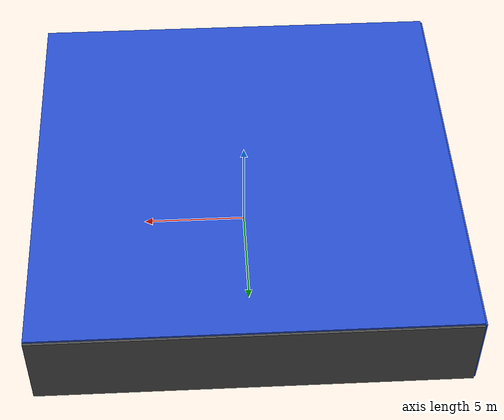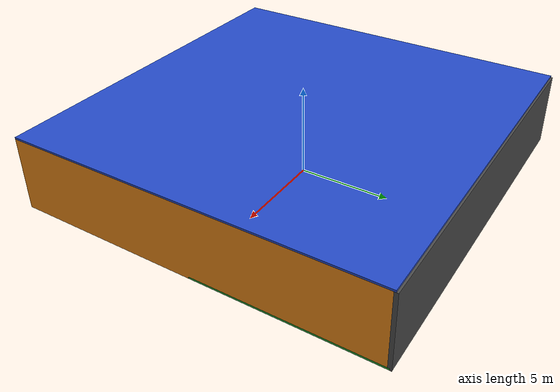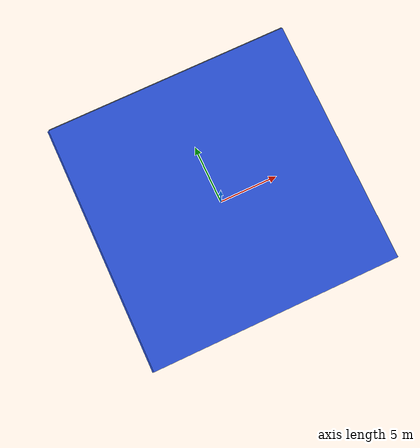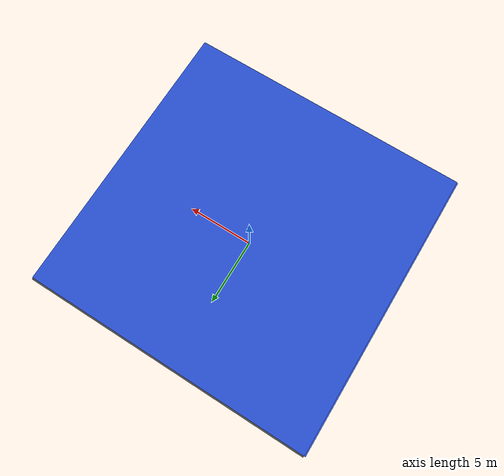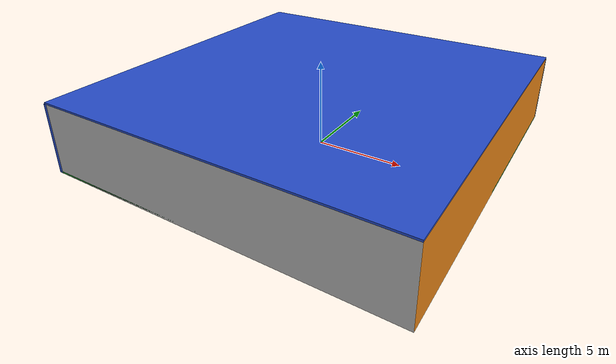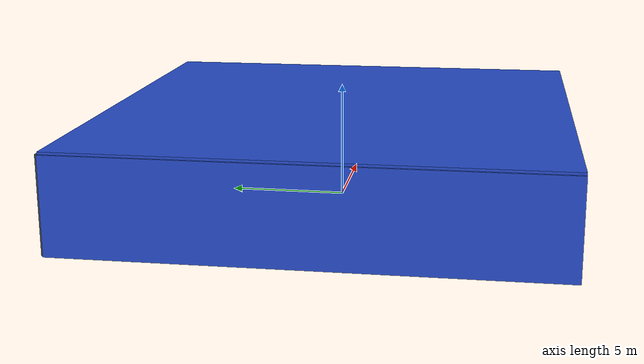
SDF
<sdf version="1.4">
 <world name="default">
  <physics type="ode">
   <max_step_size>0.001</max_step_size>
   <real_time_factor>1</real_time_factor>
   <real_time_update_rate>1000</real_time_update_rate>
   <gravity>0 0 -9.8</gravity>
  </physics>
  <scene><ambient>0.4 0.4 0.4 1</ambient><background>0.7 0.7 0.7 1</background><shadows>1</shadows></scene>
  <model name="Surrounding">
   <static>1</static>
   <link name="Ceiling">
    <collision name="Ceiling_Collision"><geometry><box><size>20 20 0.1</size></box></geometry></collision>
    <visual name="Ceiling_Visual">
     <geometry><box><size>20 20 0.1</size></box></geometry>
     <material>
      <script><uri>file://media/materials/scripts/gazebo.material</uri><name>Gazebo/Blue</name></script>
     </material>
    </visual>
    <pose>0 0 4.05 0 0 0</pose>
   </link>
   <link name="Wall_South">
    <collision name="Wall_South_Collision">
     <geometry><box><size>20 0 4</size></box></geometry>
     <pose>0 0 2 0 -0 0</pose>
    </collision>
    <visual name="Wall_South_Visual">
     <pose>0 0 2 0 -0 0</pose>
     <geometry><box><size>20 0 4</size></box></geometry>
     <material>
      <script><uri>file://media/materials/scripts/gazebo.material</uri><name>Gazebo/LightOff</name></script>
     </material>
    </visual>
    <velocity_decay><linear>0</linear><angular>0</angular></velocity_decay>
    <pose>0 -10 0 0 -0 0</pose>
   </link>
   <link name="Wall_East">
    <collision name="Wall_21_Collision">
     <geometry><box><size>20 0 4</size></box></geometry>
     <pose>0 0 2 0 -0 0</pose>
    </collision>
    <visual name="Wall_21_Visual">
     <pose>0 0 2 0 -0 0</pose>
     <geometry><box><size>20 0 4</size></box></geometry>
     <material>
      <script><uri>file://media/materials/scripts/gazebo.material</uri><name>Gazebo/Orange</name></script>
     </material>
    </visual>
    <velocity_decay><linear>0</linear><angular>0</angular></velocity_decay>
    <pose>10 0 0 0 -0 1.5708</pose>
   </link>
   <link name="Wall_North">
    <collision name="Wall_22_Collision">
     <geometry><box><size>20 0.2 4</size></box></geometry>
     <pose>0 0 2 0 -0 0</pose>
    </collision>
    <visual name="Wall_22_Visual">
     <pose>0 0 2 0 -0 0</pose>
     <geometry><box><size>20 0.2 4</size></box></geometry>
     <material>
      <script><uri>file://media/materials/scripts/gazebo.material</uri><name>Gazebo/Road</name></script>
     </material>
    </visual>
    <velocity_decay><linear>0</linear><angular>0</angular></velocity_decay>
    <pose>0 10 0 0 -0 0</pose>
   </link>
   <link name="Wall_West">
    <collision name="Wall_23_Collision">
     <geometry><box><size>20 0.2 4</size></box></geometry>
     <pose>0 0 2 0 -0 0</pose>
    </collision>
    <visual name="Wall_23_Visual">
     <pose>0 0 2 0 -0 0</pose>
     <geometry><box><size>20 0.2 4</size></box></geometry>
     <material>
      <script><uri>file://media/materials/scripts/gazebo.material</uri><name>Gazebo/BlueLaser</name></script>
     </material>
    </visual>
    <velocity_decay><linear>0</linear><angular>0</angular></velocity_decay>
    <pose>-10 0 0 0 0 -1.5708</pose>
   </link>
   <link name="Ground_link">
    <collision name="collision">
     <pose>0 0 .05 0 -0 0</pose>
     <geometry><box><size>20 20 0.1</size></box></geometry>
    </collision>
    <visual name="visual">
     <pose>0 0 .05 0 -0 0</pose>
     <geometry><box><size>20 20 0.1</size></box></geometry>
     <material>
      <script><uri>file://media/materials/scripts/gazebo.material</uri><name>Gazebo/GreenGlow</name></script>
     </material>
    </visual>
   </link>
   <static>1</static>
  </model>
  <spherical_coordinates>
   <surface_model>EARTH_WGS84</surface_model>
   <latitude_deg>0</latitude_deg>
   <longitude_deg>0</longitude_deg>
   <elevation>0</elevation>
   <heading_deg>0</heading_deg>
  </spherical_coordinates>
  <light name="lightball_0" type="diffuse">
   <diffuse>0.8 0.8 0.8 1</diffuse>
   <specular>0.2 0.2 0.2 1</specular>
   <attenuation>
    <range>100</range>
    <constant>0.7</constant>
    <linear>0.01</linear>
    <quadratic>0.001</quadratic>
   </attenuation>
   <direction>-0.5 0.1 -0.9</direction>
   <pose>4.74965194514 -3.16675350489 3.30199806109 0 0 0</pose>
  </light>
  <light name="lightball_1" type="diffuse">
   <diffuse>0.8 0.8 0.8 1</diffuse>
   <specular>0.2 0.2 0.2 1</specular>
   <attenuation>
    <range>100</range>
    <constant>0.7</constant>
    <linear>0.01</linear>
    <quadratic>0.001</quadratic>
   </attenuation>
   <direction>-0.5 0.1 -0.9</direction>
   <pose>2.38953933724 -9.25972449616 1.83572169368 0 0 0</pose>
  </light>
  <light name="lightball_2" type="diffuse">
   <diffuse>0.8 0.8 0.8 1</diffuse>
   <specular>0.2 0.2 0.2 1</specular>
   <attenuation>
    <range>100</range>
    <constant>0.7</constant>
    <linear>0.01</linear>
    <quadratic>0.001</quadratic>
   </attenuation>
   <direction>-0.5 0.1 -0.9</direction>
   <pose>2.31775702573 -5.59412869235 2.30058139841 0 0 0</pose>
  </light>
  <include>
   <uri>model://textured_shapes</uri>
   <pose>-5.25429917039 1.37376674667 0 0 0 0.0642331118764</pose>
  </include>
  <include><uri>model://cabinet</uri><pose>-1.74950805418 3.47395011037 0 0 0 1.65574952258</pose></include>
  <include><uri>model://cabinet</uri><pose>-1.09772439595 7.67421461001 0 0 0 2.05401122854</pose></include>
  <include><uri>model://cabinet</uri><pose>2.65556388385 -4.50815747656 0 0 0 2.32528830556</pose></include>
  <include><uri>model://cabinet</uri><pose>2.48879256538 1.79596814151 0 0 0 2.74587188384</pose></include>
  <include><uri>model://cabinet</uri><pose>1.87526057692 4.79898622221 0 0 0 0.858003121665</pose></include>
  <include><uri>model://cabinet</uri><pose>5.68452115506 7.17675591756 0 0 0 0.642338032576</pose></include>
 </world>
</sdf>

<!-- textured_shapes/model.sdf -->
<sdf version="1.6">
  <model name="textured_shapes">
    <pose>0 0 0.5 0 0 0</pose>
    <link name="box">
      <pose>0 -1.5 0 0 0 0</pose>
      <collision name="collision">
        <geometry>
          <box>
            <size>1 1 1</size>
          </box>
        </geometry>
      </collision>
      <visual name="visual">
        <geometry>
          <box>
            <size>1 1 1</size>
          </box>
        </geometry>
        <material>
          <script>
            <uri>model://../model_source/models/textured_shapes/materials/scripts</uri>
            <uri>model://../model_source/models/textured_shapes/materials/textures</uri>
            <name>TexturedShape/Squares</name>
          </script>
        </material>
      </visual>
    </link>
    <link name="sphere">
      <collision name="collision">
        <geometry>
          <sphere>
            <radius>0.5</radius>
          </sphere>
        </geometry>
      </collision>
      <visual name="visual">
        <geometry>
          <sphere>
            <radius>0.5</radius>
          </sphere>
        </geometry>
        <material>
          <script>
            <uri>model://../model_source/models/textured_shapes/materials/scripts</uri>
            <uri>model://../model_source/models/textured_shapes/materials/textures</uri>
            <name>TexturedShape/Squares</name>
          </script>
        </material>
      </visual>
    </link>
    <link name="cylinder">
      <pose>0 1.5 0 0 0 0</pose>
      <collision name="collision">
        <geometry>
          <cylinder>
            <radius>0.5</radius>
            <length>1</length>
          </cylinder>
        </geometry>
      </collision>
      <visual name="visual">
        <geometry>
          <cylinder>
            <radius>0.5</radius>
            <length>1</length>
          </cylinder>
        </geometry>
        <material>
          <script>
            <uri>model://../model_source/models/textured_shapes/materials/scripts</uri>
            <uri>model://../model_source/models/textured_shapes/materials/textures</uri>
            <name>TexturedShape/Squares</name>
          </script>
        </material>
      </visual>
    </link>
  </model>
</sdf>

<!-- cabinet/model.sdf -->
<sdf version="1.5">
  <model name="cabinet">
    <static>true</static>
    <link name="cabinet_bottom_plate">
      <inertial>
        <pose>0 0 -1 0 0 0</pose>
        <inertia>
          <ixx>2.050000</ixx>
          <ixy>0</ixy>
          <ixz>0</ixz>
          <iyy>2.050000</iyy>
          <iyz>0</iyz>
          <izz>2.050000</izz>
        </inertia>
        <mass>25.000000</mass>
      </inertial>
      <collision name="cabinet_bottom_plate_geom">
        <pose>0 0 0.010000 0 0 0</pose>
        <geometry>
          <box>
            <size>0.450000 0.450000 0.020000</size>
          </box>
        </geometry>
      </collision>
      <visual name="cabinet_bottom_plate_geom_visual">
        <pose>0 0 0.010000 0 0 0</pose>
        <geometry>
          <box>
            <size>0.450000 0.450000 0.020000</size>
          </box>
        </geometry>
        <material>
          <script>
            <uri>model://media/materials/scripts/gazebo.material</uri>
            <name>Gazebo/Wood</name>
          </script>
        </material>
      </visual>
      <collision name="cabinet_bottom_plate_geom_cabinet_back_plate">
        <pose>0.235000 0 0.510000 0 0 0</pose>
        <geometry>
          <box>
            <size>0.020000 0.450000 1.020000</size>
          </box>
        </geometry>
      </collision>
      <visual name="cabinet_bottom_plate_geom_cabinet_back_plate_visual">
        <pose>0.235000 0 0.510000 0 0 0</pose>
        <geometry>
          <box>
            <size>0.020000 0.450000 1.020000</size>
          </box>
        </geometry>
        <material>
          <script>
            <uri>model://media/materials/scripts/gazebo.material</uri>
            <name>Gazebo/Wood</name>
          </script>
        </material>
      </visual>
      <collision name="cabinet_bottom_plate_geom_cabinet_left_plate">
        <pose>0 0.235000 0.510000 0 0 0</pose>
        <geometry>
          <box>
            <size>0.450000 0.020000 1.020000</size>
          </box>
        </geometry>
      </collision>
      <visual name="cabinet_bottom_plate_geom_cabinet_left_plate_visual">
        <pose>0 0.235000 0.510000 0 0 0</pose>
        <geometry>
          <box>
            <size>0.450000 0.020000 1.020000</size>
          </box>
        </geometry>
        <material>
          <script>
            <uri>model://media/materials/scripts/gazebo.material</uri>
            <name>Gazebo/Wood</name>
          </script>
        </material>
      </visual>
      <collision name="cabinet_bottom_plate_geom_cabinet_middle_plate">
        <pose>0 0 0.510000 0 0 0</pose>
        <geometry>
          <box>
            <size>0.450000 0.450000 0.020000</size>
          </box>
        </geometry>
      </collision>
      <visual name="cabinet_bottom_plate_geom_cabinet_middle_plate_visual">
        <pose>0 0 0.510000 0 0 0</pose>
        <geometry>
          <box>
            <size>0.450000 0.450000 0.020000</size>
          </box>
        </geometry>
        <material>
          <script>
            <uri>model://media/materials/scripts/gazebo.material</uri>
            <name>Gazebo/Wood</name>
          </script>
        </material>
      </visual>
      <collision name="cabinet_bottom_plate_geom_cabinet_right_plate">
        <pose>0 -0.235000 0.510000 0 0 0</pose>
        <geometry>
          <box>
            <size>0.450000 0.020000 1.020000</size>
          </box>
        </geometry>
      </collision>
      <visual name="cabinet_bottom_plate_geom_cabinet_right_plate_visual">
        <pose>0 -0.235000 0.510000 0 0 0</pose>
        <geometry>
          <box>
            <size>0.450000 0.020000 1.020000</size>
          </box>
        </geometry>
        <material>
          <script>
            <uri>model://media/materials/scripts/gazebo.material</uri>
            <name>Gazebo/Wood</name>
          </script>
        </material>
      </visual>
      <collision name="cabinet_bottom_plate_geom_cabinet_top_plate">
        <pose>0 0 1.010000 0 0 0</pose>
        <geometry>
          <box>
            <size>0.450000 0.450000 0.020000</size>
          </box>
        </geometry>
      </collision>
      <visual name="cabinet_bottom_plate_geom_cabinet_top_plate_visual">
        <pose>0 0 1.010000 0 0 0</pose>
        <geometry>
          <box>
            <size>0.450000 0.450000 0.020000</size>
          </box>
        </geometry>
        <material>
          <script>
            <uri>model://media/materials/scripts/gazebo.material</uri>
            <name>Gazebo/Wood</name>
          </script>
        </material>
      </visual>
    </link>
  </model>
</sdf>
